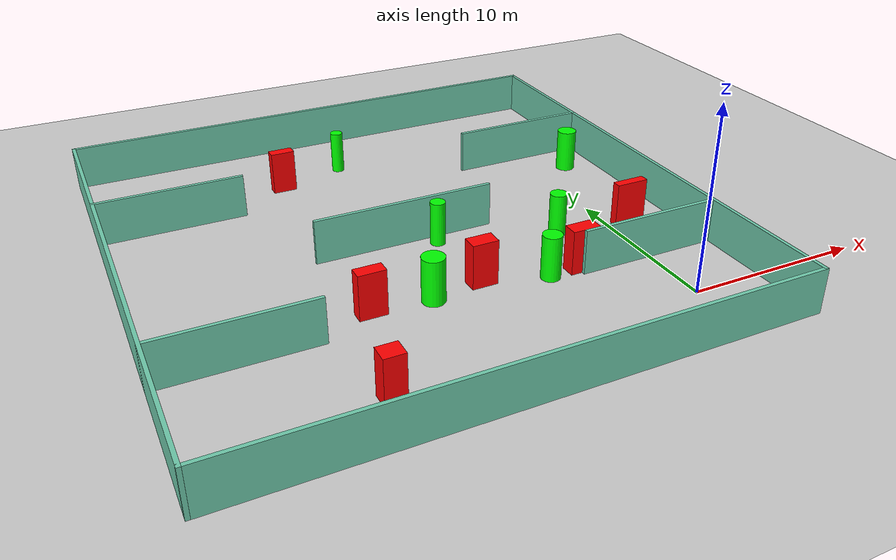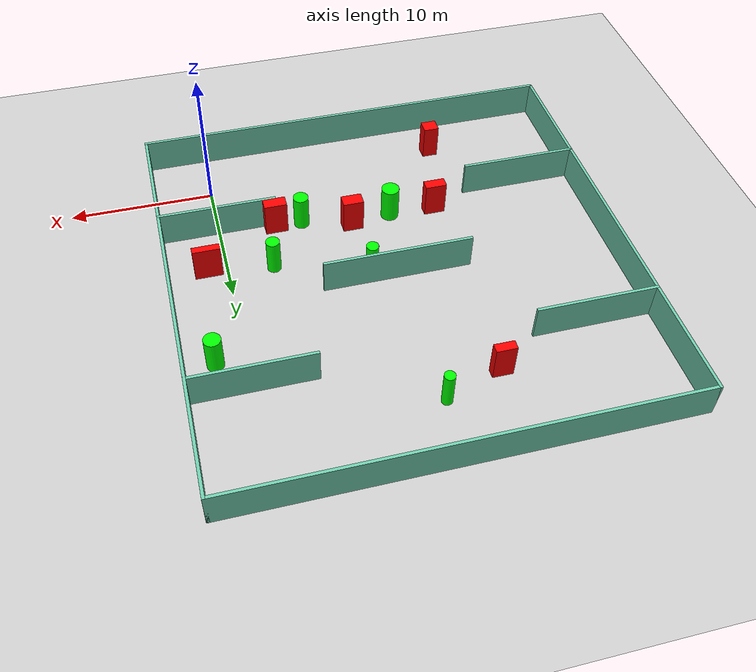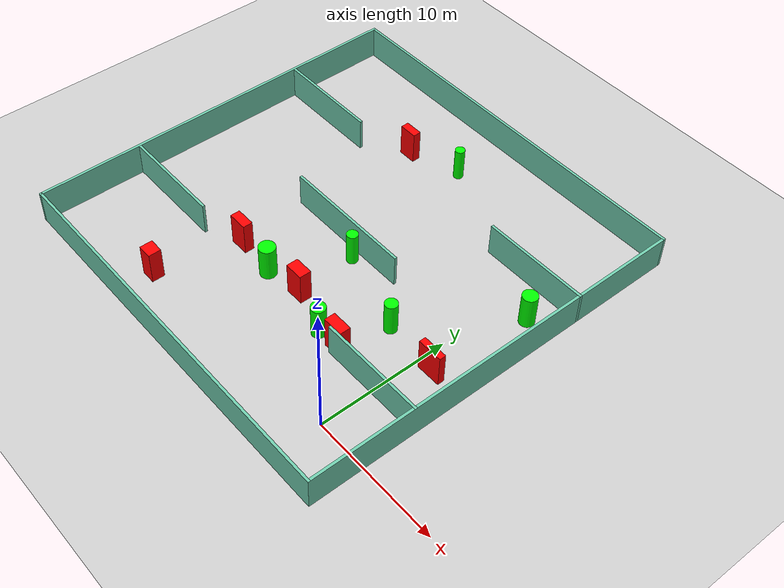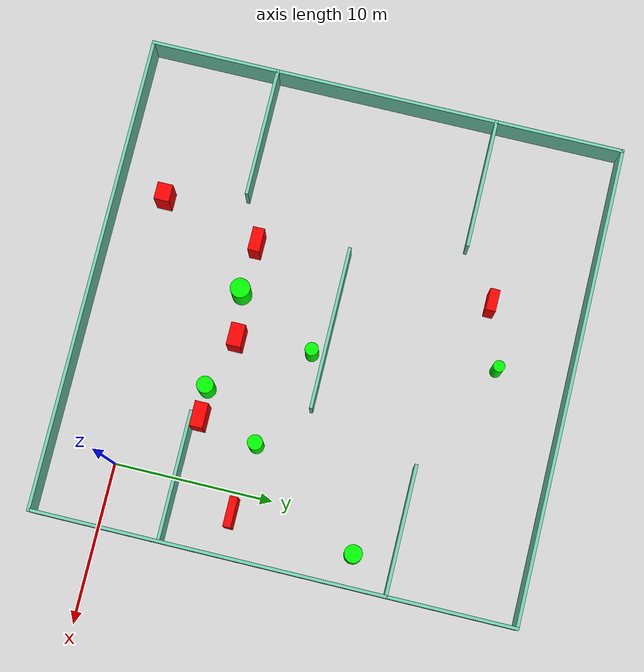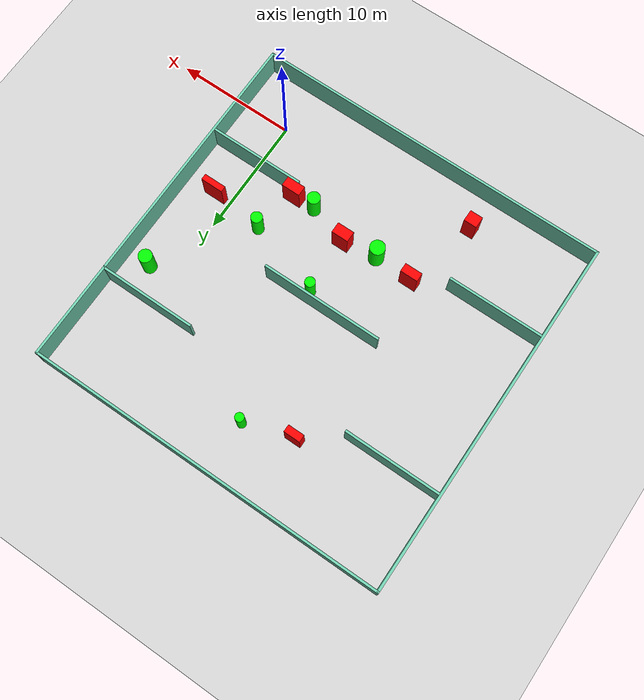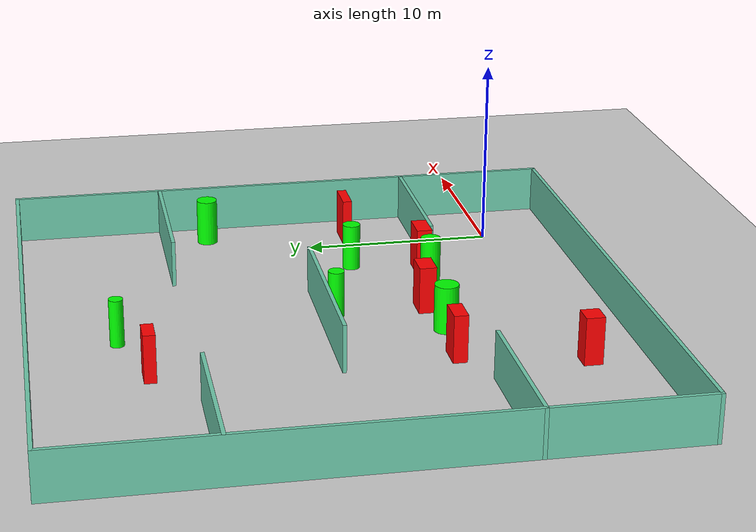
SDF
<sdf version="1.7">
 <world name="default">
  <light name="sun" type="directional">
   <pose>0 0 10 0 -0 0</pose>
   <diffuse>0.8 0.8 0.8 1</diffuse>
   <specular>0.2 0.2 0.2 1</specular>
   <attenuation>
    <range>1000</range>
    <constant>0.9</constant>
    <linear>0.01</linear>
    <quadratic>0.001</quadratic>
   </attenuation>
   <direction>-0.5 0.1 -0.9</direction>
   <spot><inner_angle>0</inner_angle><outer_angle>0</outer_angle><falloff>0</falloff></spot>
  </light>
  <model name="ground_plane">
   <static>1</static>
   <link name="link">
    <collision name="collision">
     <geometry><plane><normal>0 0 1</normal><size>100 100</size></plane></geometry>
     <surface>
      <contact><collide_bitmask>65535</collide_bitmask></contact>
      <friction><ode><mu>100</mu><mu2>50</mu2></ode></friction>
     </surface>
    </collision>
    <visual name="visual">
     <cast_shadows>0</cast_shadows>
     <geometry><plane><normal>0 0 1</normal><size>100 100</size></plane></geometry>
     <material>
      <script><uri>file://media/materials/scripts/gazebo.material</uri><name>Gazebo/Grey</name></script>
     </material>
    </visual>
   </link>
  </model>
  <gravity>0 0 -9.8</gravity>
  <magnetic_field>6e-06 2.3e-05 -4.2e-05</magnetic_field>
  <atmosphere type="adiabatic"/>
  <physics type="ode">
   <max_step_size>0.001</max_step_size>
   <real_time_factor>1</real_time_factor>
   <real_time_update_rate>1000</real_time_update_rate>
  </physics>
  <scene><ambient>0.4 0.4 0.4 1</ambient><background>0.7 0.7 0.7 1</background><shadows>1</shadows></scene>
  <spherical_coordinates>
   <surface_model>EARTH_WGS84</surface_model>
   <latitude_deg>0</latitude_deg>
   <longitude_deg>0</longitude_deg>
   <elevation>0</elevation>
   <heading_deg>0</heading_deg>
  </spherical_coordinates>
  <model name="my_base_walls">
   <link name="Wall_10">
    <collision name="Wall_10_Collision">
     <geometry><box><size>8.2 0.2 2.5</size></box></geometry>
     <pose>0 0 1.25 0 -0 0</pose>
    </collision>
    <visual name="Wall_10_Visual">
     <pose>0 0 1.25 0 -0 0</pose>
     <geometry><box><size>8.2 0.2 2.5</size></box></geometry>
     <material>
      <script><uri>file://media/materials/scripts/gazebo.material</uri><name>Gazebo/Grey</name></script>
      <ambient>0.435294 0.796078 0.67451 1</ambient>
     </material>
     <meta><layer>0</layer></meta>
    </visual>
    <pose>-11 -7 0 0 -0 0</pose>
   </link>
   <link name="Wall_12">
    <collision name="Wall_12_Collision">
     <geometry><box><size>8.2 0.2 2.5</size></box></geometry>
     <pose>0 0 1.25 0 -0 0</pose>
    </collision>
    <visual name="Wall_12_Visual">
     <pose>0 0 1.25 0 -0 0</pose>
     <geometry><box><size>8.2 0.2 2.5</size></box></geometry>
     <material>
      <script><uri>file://media/materials/scripts/gazebo.material</uri><name>Gazebo/Grey</name></script>
      <ambient>0.435294 0.796078 0.67451 1</ambient>
     </material>
     <meta><layer>0</layer></meta>
    </visual>
    <pose>-11 7 0 0 -0 0</pose>
   </link>
   <link name="Wall_14">
    <collision name="Wall_14_Collision">
     <geometry><box><size>8.2 0.2 2.5</size></box></geometry>
     <pose>0 0 1.25 0 -0 0</pose>
    </collision>
    <visual name="Wall_14_Visual">
     <pose>0 0 1.25 0 -0 0</pose>
     <geometry><box><size>8.2 0.2 2.5</size></box></geometry>
     <material>
      <script><uri>file://media/materials/scripts/gazebo.material</uri><name>Gazebo/Grey</name></script>
      <ambient>0.435294 0.796078 0.67451 1</ambient>
     </material>
     <meta><layer>0</layer></meta>
    </visual>
    <pose>11 7 0 0 -0 3.14159</pose>
   </link>
   <link name="Wall_16">
    <collision name="Wall_16_Collision">
     <geometry><box><size>10.2 0.2 2.5</size></box></geometry>
     <pose>0 0 1.25 0 -0 0</pose>
    </collision>
    <visual name="Wall_16_Visual">
     <pose>0 0 1.25 0 -0 0</pose>
     <geometry><box><size>10.2 0.2 2.5</size></box></geometry>
     <material>
      <script><uri>file://media/materials/scripts/gazebo.material</uri><name>Gazebo/Grey</name></script>
      <ambient>0.435294 0.796078 0.67451 1</ambient>
     </material>
     <meta><layer>0</layer></meta>
    </visual>
    <pose>0 0 0 0 -0 3.14159</pose>
   </link>
   <link name="Wall_2">
    <collision name="Wall_2_Collision">
     <geometry><box><size>30.2 0.2 2.5</size></box></geometry>
     <pose>0 0 1.25 0 -0 0</pose>
    </collision>
    <visual name="Wall_2_Visual">
     <pose>0 0 1.25 0 -0 0</pose>
     <geometry><box><size>30.2 0.2 2.5</size></box></geometry>
     <material>
      <script><uri>file://media/materials/scripts/gazebo.material</uri><name>Gazebo/Grey</name></script>
      <ambient>0.435294 0.796078 0.67451 1</ambient>
     </material>
     <meta><layer>0</layer></meta>
    </visual>
    <pose>0 -15 0 0 -0 3.14159</pose>
   </link>
   <link name="Wall_3">
    <collision name="Wall_3_Collision">
     <geometry><box><size>30.2 0.2 2.5</size></box></geometry>
     <pose>0 0 1.25 0 -0 0</pose>
    </collision>
    <visual name="Wall_3_Visual">
     <pose>0 0 1.25 0 -0 0</pose>
     <geometry><box><size>30.2 0.2 2.5</size></box></geometry>
     <material>
      <script><uri>file://media/materials/scripts/gazebo.material</uri><name>Gazebo/Grey</name></script>
      <ambient>0.435294 0.796078 0.67451 1</ambient>
     </material>
     <meta><layer>0</layer></meta>
    </visual>
    <pose>-15 0 0 0 -0 1.5708</pose>
   </link>
   <link name="Wall_4">
    <collision name="Wall_4_Collision">
     <geometry><box><size>30.2 0.2 2.5</size></box></geometry>
     <pose>0 0 1.25 0 -0 0</pose>
    </collision>
    <visual name="Wall_4_Visual">
     <pose>0 0 1.25 0 -0 0</pose>
     <geometry><box><size>30.2 0.2 2.5</size></box></geometry>
     <material>
      <script><uri>file://media/materials/scripts/gazebo.material</uri><name>Gazebo/Grey</name></script>
      <ambient>0.435294 0.796078 0.67451 1</ambient>
     </material>
     <meta><layer>0</layer></meta>
    </visual>
    <pose>0 15 0 0 -0 0</pose>
   </link>
   <link name="Wall_6">
    <collision name="Wall_6_Collision">
     <geometry><box><size>30.2 0.2 2.5</size></box></geometry>
     <pose>0 0 1.25 0 -0 0</pose>
    </collision>
    <visual name="Wall_6_Visual">
     <pose>0 0 1.25 0 -0 0</pose>
     <geometry><box><size>30.2 0.2 2.5</size></box></geometry>
     <material>
      <script><uri>file://media/materials/scripts/gazebo.material</uri><name>Gazebo/Grey</name></script>
      <ambient>0.435294 0.796078 0.67451 1</ambient>
     </material>
     <meta><layer>0</layer></meta>
    </visual>
    <pose>15 0 0 0 -0 1.5708</pose>
   </link>
   <link name="Wall_8">
    <collision name="Wall_8_Collision">
     <geometry><box><size>8.2 0.2 2.5</size></box></geometry>
     <pose>0 0 1.25 0 -0 0</pose>
    </collision>
    <visual name="Wall_8_Visual">
     <pose>0 0 1.25 0 -0 0</pose>
     <geometry><box><size>8.2 0.2 2.5</size></box></geometry>
     <material>
      <script><uri>file://media/materials/scripts/gazebo.material</uri><name>Gazebo/Grey</name></script>
      <ambient>0.435294 0.796078 0.67451 1</ambient>
     </material>
     <meta><layer>0</layer></meta>
    </visual>
    <pose>11 -7 0 0 -0 3.14159</pose>
   </link>
   <static>1</static>
   <pose>-11 11 0 0 -0 0</pose>
  </model>
  <model name="cylinder1">
   <static>1</static>
   <link name="link">
    <inertial>
     <mass>1</mass>
     <inertia><ixx>0.5</ixx><ixy>0</ixy><ixz>0</ixz><iyy>0.5</iyy><iyz>0</iyz><izz>1</izz></inertia>
    </inertial>
    <collision name="collision">
     <geometry><cylinder><radius>0.3630760958783529</radius><length>2.5</length></cylinder></geometry>
    </collision>
    <visual name="visual">
     <geometry><cylinder><radius>0.3630760958783529</radius><length>2.5</length></cylinder></geometry>
     <material>
      <ambient>0 1 0 1</ambient>
      <diffuse>0 1 0 1</diffuse>
      <specular>0.1 0.1 0.1 1</specular>
      <emissive>0 0 0 0</emissive>
     </material>
    </visual>
   </link>
   <pose>-11.072708252274264 21.513104158665293 1.25 0 0 0</pose>
  </model>
  <model name="cylinder2">
   <static>1</static>
   <link name="link">
    <inertial>
     <mass>1</mass>
     <inertia><ixx>0.5</ixx><ixy>0</ixy><ixz>0</ixz><iyy>0.5</iyy><iyz>0</iyz><izz>1</izz></inertia>
    </inertial>
    <collision name="collision">
     <geometry><cylinder><radius>0.5316270661925884</radius><length>2.5</length></cylinder></geometry>
    </collision>
    <visual name="visual">
     <geometry><cylinder><radius>0.5316270661925884</radius><length>2.5</length></cylinder></geometry>
     <material>
      <ambient>0 1 0 1</ambient>
      <diffuse>0 1 0 1</diffuse>
      <specular>0.1 0.1 0.1 1</specular>
      <emissive>0 0 0 0</emissive>
     </material>
    </visual>
   </link>
   <pose>-5.796493328435659 4.430355667718582 1.25 0 0 0</pose>
  </model>
  <model name="cylinder3">
   <static>1</static>
   <link name="link">
    <inertial>
     <mass>1</mass>
     <inertia><ixx>0.5</ixx><ixy>0</ixy><ixz>0</ixz><iyy>0.5</iyy><iyz>0</iyz><izz>1</izz></inertia>
    </inertial>
    <collision name="collision">
     <geometry><cylinder><radius>0.6203340330169029</radius><length>2.5</length></cylinder></geometry>
    </collision>
    <visual name="visual">
     <geometry><cylinder><radius>0.6203340330169029</radius><length>2.5</length></cylinder></geometry>
     <material>
      <ambient>0 1 0 1</ambient>
      <diffuse>0 1 0 1</diffuse>
      <specular>0.1 0.1 0.1 1</specular>
      <emissive>0 0 0 0</emissive>
     </material>
    </visual>
   </link>
   <pose>-12.079879390660391 5.05563414549964 1.25 0 0 0</pose>
  </model>
  <model name="cylinder4">
   <static>1</static>
   <link name="link">
    <inertial>
     <mass>1</mass>
     <inertia><ixx>0.5</ixx><ixy>0</ixy><ixz>0</ixz><iyy>0.5</iyy><iyz>0</iyz><izz>1</izz></inertia>
    </inertial>
    <collision name="collision">
     <geometry><cylinder><radius>0.47326757387890706</radius><length>2.5</length></cylinder></geometry>
    </collision>
    <visual name="visual">
     <geometry><cylinder><radius>0.47326757387890706</radius><length>2.5</length></cylinder></geometry>
     <material>
      <ambient>0 1 0 1</ambient>
      <diffuse>0 1 0 1</diffuse>
      <specular>0.1 0.1 0.1 1</specular>
      <emissive>0 0 0 0</emissive>
     </material>
    </visual>
   </link>
   <pose>-3.1034916101328776 8.220682109795044 1.25 0 0 0</pose>
  </model>
  <model name="cylinder5">
   <static>1</static>
   <link name="link">
    <inertial>
     <mass>1</mass>
     <inertia><ixx>0.5</ixx><ixy>0</ixy><ixz>0</ixz><iyy>0.5</iyy><iyz>0</iyz><izz>1</izz></inertia>
    </inertial>
    <collision name="collision">
     <geometry><cylinder><radius>0.41997328814234525</radius><length>2.5</length></cylinder></geometry>
    </collision>
    <visual name="visual">
     <geometry><cylinder><radius>0.41997328814234525</radius><length>2.5</length></cylinder></geometry>
     <material>
      <ambient>0 1 0 1</ambient>
      <diffuse>0 1 0 1</diffuse>
      <specular>0.1 0.1 0.1 1</specular>
      <emissive>0 0 0 0</emissive>
     </material>
    </visual>
   </link>
   <pose>-9.427279793278608 10.199411396574238 1.25 0 0 0</pose>
  </model>
  <model name="cylinder6">
   <static>1</static>
   <link name="link">
    <inertial>
     <mass>1</mass>
     <inertia><ixx>0.5</ixx><ixy>0</ixy><ixz>0</ixz><iyy>0.5</iyy><iyz>0</iyz><izz>1</izz></inertia>
    </inertial>
    <collision name="collision">
     <geometry><cylinder><radius>0.561250787716447</radius><length>2.5</length></cylinder></geometry>
    </collision>
    <visual name="visual">
     <geometry><cylinder><radius>0.561250787716447</radius><length>2.5</length></cylinder></geometry>
     <material>
      <ambient>0 1 0 1</ambient>
      <diffuse>0 1 0 1</diffuse>
      <specular>0.1 0.1 0.1 1</specular>
      <emissive>0 0 0 0</emissive>
     </material>
    </visual>
   </link>
   <pose>2.000796359976494 15.527792260746452 1.25 0 0 0</pose>
  </model>
  <model name="box1">
   <static>1</static>
   <link name="link">
    <inertial>
     <mass>1</mass>
     <inertia><ixx>0.083</ixx><ixy>0</ixy><ixz>0</ixz><iyy>0.083</iyy><iyz>0</iyz><izz>0.083</izz></inertia>
    </inertial>
    <collision name="collision">
     <geometry><box><size>1.4275325036786672 0.8985582563938517 2.5</size></box></geometry>
    </collision>
    <visual name="visual">
     <geometry><box><size>1.4275325036786672 0.8985582563938517 2.5</size></box></geometry>
     <material>
      <ambient>1 0 0 1</ambient>
      <diffuse>1 0 0 1</diffuse>
      <specular>0.1 0.1 0.1 1</specular>
      <emissive>0 0 0 0</emissive>
     </material>
    </visual>
    <sensor name="my_contact" type="contact">
     <contact><collision>box_collision</collision><topic>__default_topic__</topic></contact>
    </sensor>
   </link>
   <pose>-9.21405133449533 5.503013284236676 1.25 0 0 0</pose>
  </model>
  <model name="box2">
   <static>1</static>
   <link name="link">
    <inertial>
     <mass>1</mass>
     <inertia><ixx>0.083</ixx><ixy>0</ixy><ixz>0</ixz><iyy>0.083</iyy><iyz>0</iyz><izz>0.083</izz></inertia>
    </inertial>
    <collision name="collision">
     <geometry><box><size>1.3704008119267512 0.6135129968965816 2.5</size></box></geometry>
    </collision>
    <visual name="visual">
     <geometry><box><size>1.3704008119267512 0.6135129968965816 2.5</size></box></geometry>
     <material>
      <ambient>1 0 0 1</ambient>
      <diffuse>1 0 0 1</diffuse>
      <specular>0.1 0.1 0.1 1</specular>
      <emissive>0 0 0 0</emissive>
     </material>
    </visual>
    <sensor name="my_contact" type="contact">
     <contact><collision>box_collision</collision><topic>__default_topic__</topic></contact>
    </sensor>
   </link>
   <pose>-14.982463564682273 20.25683429269869 1.25 0 0 0</pose>
  </model>
  <model name="box3">
   <static>1</static>
   <link name="link">
    <inertial>
     <mass>1</mass>
     <inertia><ixx>0.083</ixx><ixy>0</ixy><ixz>0</ixz><iyy>0.083</iyy><iyz>0</iyz><izz>0.083</izz></inertia>
    </inertial>
    <collision name="collision">
     <geometry><box><size>1.0893833418049543 0.9591236215562785 2.5</size></box></geometry>
    </collision>
    <visual name="visual">
     <geometry><box><size>1.0893833418049543 0.9591236215562785 2.5</size></box></geometry>
     <material>
      <ambient>1 0 0 1</ambient>
      <diffuse>1 0 0 1</diffuse>
      <specular>0.1 0.1 0.1 1</specular>
      <emissive>0 0 0 0</emissive>
     </material>
    </visual>
    <sensor name="my_contact" type="contact">
     <contact><collision>box_collision</collision><topic>__default_topic__</topic></contact>
    </sensor>
   </link>
   <pose>-16.827709606914386 -1.0164597652597998 1.25 0 0 0</pose>
  </model>
  <model name="box4">
   <static>1</static>
   <link name="link">
    <inertial>
     <mass>1</mass>
     <inertia><ixx>0.083</ixx><ixy>0</ixy><ixz>0</ixz><iyy>0.083</iyy><iyz>0</iyz><izz>0.083</izz></inertia>
    </inertial>
    <collision name="collision">
     <geometry><box><size>1.4792217507640357 0.7309252992328529 2.5</size></box></geometry>
    </collision>
    <visual name="visual">
     <geometry><box><size>1.4792217507640357 0.7309252992328529 2.5</size></box></geometry>
     <material>
      <ambient>1 0 0 1</ambient>
      <diffuse>1 0 0 1</diffuse>
      <specular>0.1 0.1 0.1 1</specular>
      <emissive>0 0 0 0</emissive>
     </material>
    </visual>
    <sensor name="my_contact" type="contact">
     <contact><collision>box_collision</collision><topic>__default_topic__</topic></contact>
    </sensor>
   </link>
   <pose>-15.269334118369468 5.273813838875043 1.25 0 0 0</pose>
  </model>
  <model name="box5">
   <static>1</static>
   <link name="link">
    <inertial>
     <mass>1</mass>
     <inertia><ixx>0.083</ixx><ixy>0</ixy><ixz>0</ixz><iyy>0.083</iyy><iyz>0</iyz><izz>0.083</izz></inertia>
    </inertial>
    <collision name="collision">
     <geometry><box><size>1.5708013741858224 0.8302884747685595 2.5</size></box></geometry>
    </collision>
    <visual name="visual">
     <geometry><box><size>1.5708013741858224 0.8302884747685595 2.5</size></box></geometry>
     <material>
      <ambient>1 0 0 1</ambient>
      <diffuse>1 0 0 1</diffuse>
      <specular>0.1 0.1 0.1 1</specular>
      <emissive>0 0 0 0</emissive>
     </material>
    </visual>
    <sensor name="my_contact" type="contact">
     <contact><collision>box_collision</collision><topic>__default_topic__</topic></contact>
    </sensor>
   </link>
   <pose>-3.949030807065892 4.5070815950027505 1.25 0 0 0</pose>
  </model>
  <model name="box6">
   <static>1</static>
   <link name="link">
    <inertial>
     <mass>1</mass>
     <inertia><ixx>0.083</ixx><ixy>0</ixy><ixz>0</ixz><iyy>0.083</iyy><iyz>0</iyz><izz>0.083</izz></inertia>
    </inertial>
    <collision name="collision">
     <geometry><box><size>1.8856448446368326 0.5012330989486908 2.5</size></box></geometry>
    </collision>
    <visual name="visual">
     <geometry><box><size>1.8856448446368326 0.5012330989486908 2.5</size></box></geometry>
     <material>
      <ambient>1 0 0 1</ambient>
      <diffuse>1 0 0 1</diffuse>
      <specular>0.1 0.1 0.1 1</specular>
      <emissive>0 0 0 0</emissive>
     </material>
    </visual>
    <sensor name="my_contact" type="contact">
     <contact><collision>box_collision</collision><topic>__default_topic__</topic></contact>
    </sensor>
   </link>
   <pose>1.2912904634669857 7.789163950538304 1.25 0 0 0</pose>
  </model>
 </world>
</sdf>
